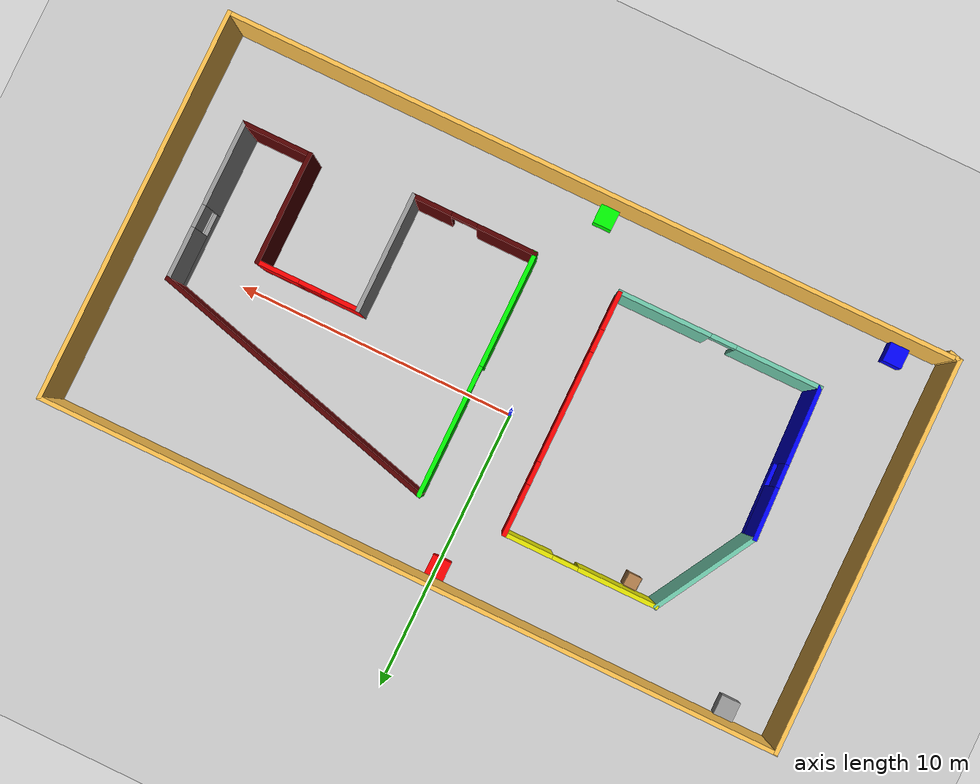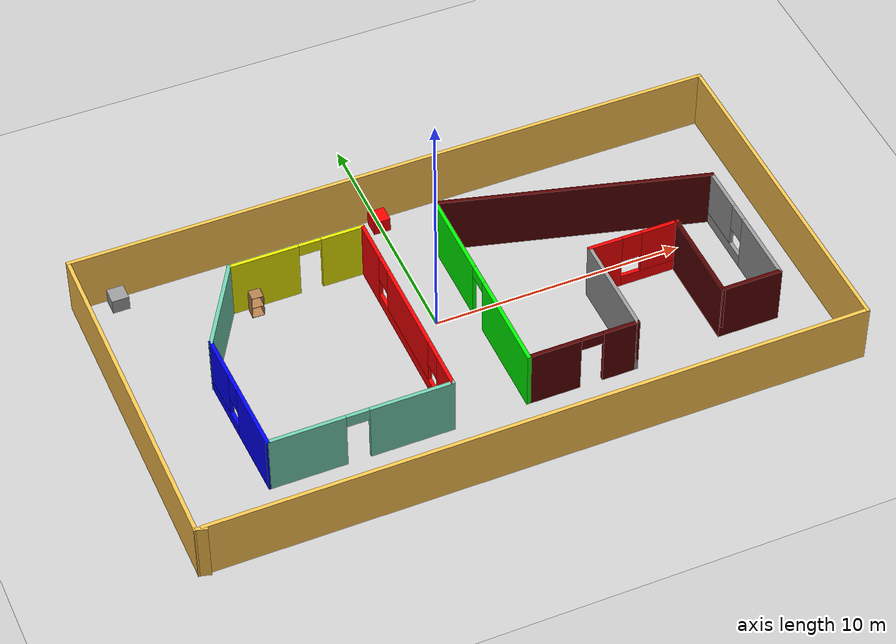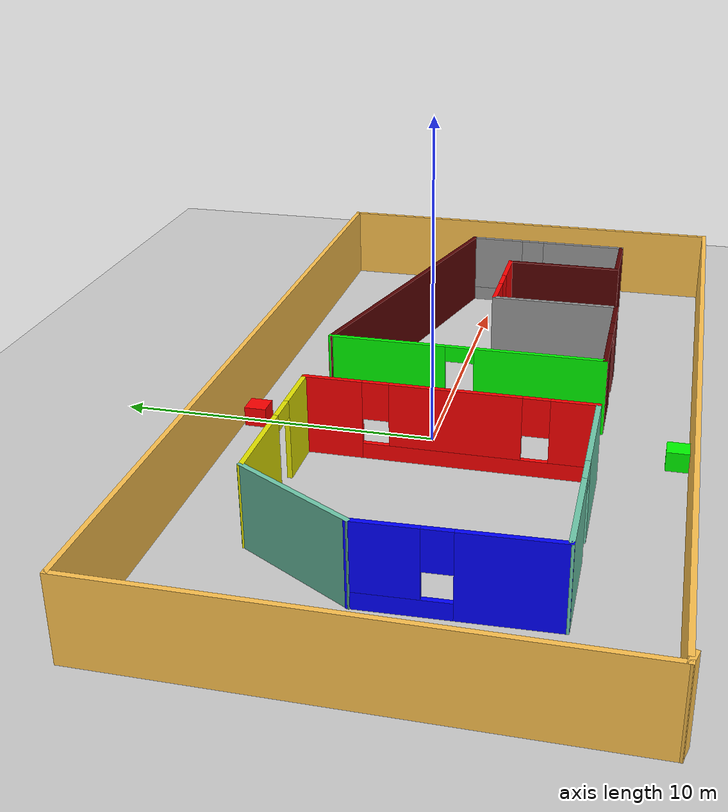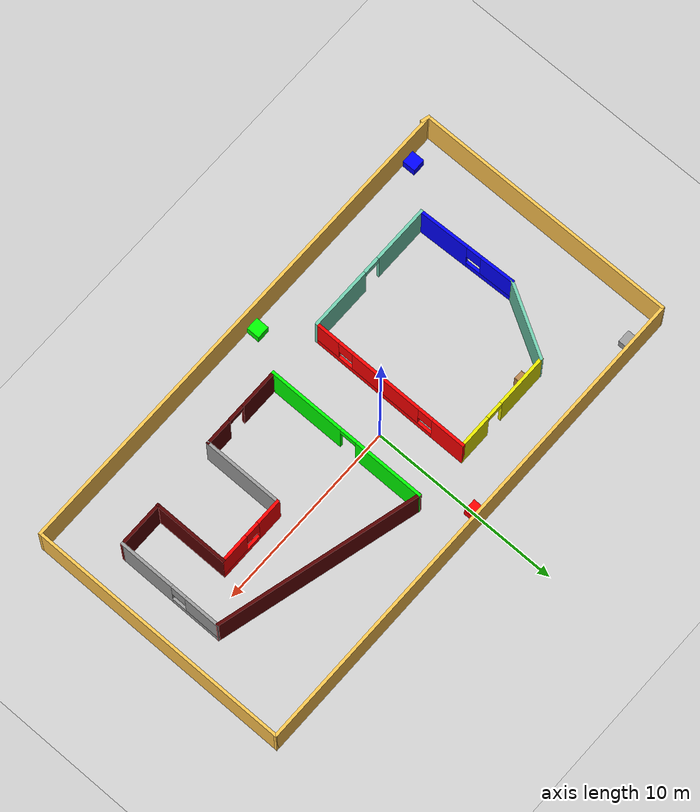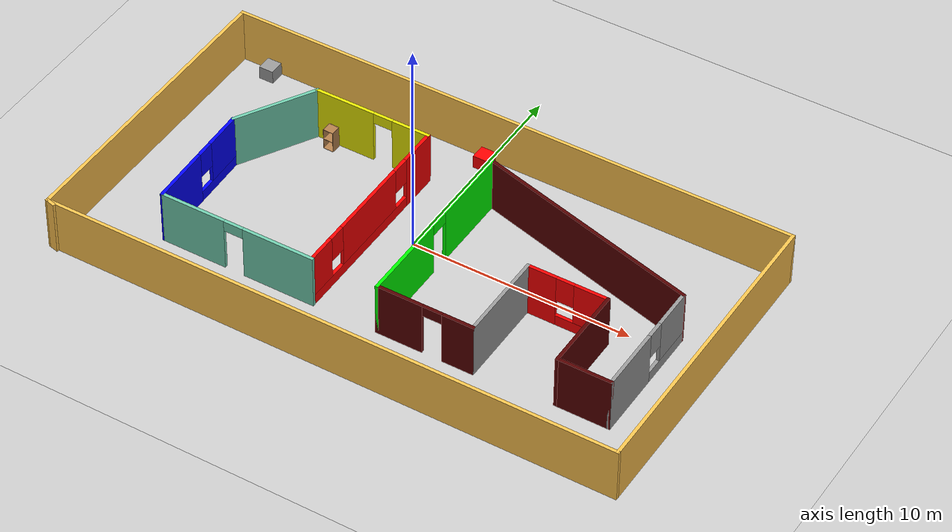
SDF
<sdf version="1.6">
 <world name="default">
  <light name="sun" type="directional">
   <pose>0 0 10 0 -0 0</pose>
   <diffuse>0.8 0.8 0.8 1</diffuse>
   <specular>0.2 0.2 0.2 1</specular>
   <attenuation>
    <range>1000</range>
    <constant>0.9</constant>
    <linear>0.01</linear>
    <quadratic>0.001</quadratic>
   </attenuation>
   <direction>-0.5 0.1 -0.9</direction>
  </light>
  <model name="ground_plane">
   <static>1</static>
   <link name="link">
    <collision name="collision">
     <geometry><plane><normal>0 0 1</normal><size>100 100</size></plane></geometry>
     <surface>
      <contact><collide_bitmask>65535</collide_bitmask></contact>
      <friction><ode><mu>100</mu><mu2>50</mu2></ode></friction>
     </surface>
    </collision>
    <visual name="visual">
     <cast_shadows>0</cast_shadows>
     <geometry><plane><normal>0 0 1</normal><size>100 100</size></plane></geometry>
     <material>
      <script><uri>file://media/materials/scripts/gazebo.material</uri><name>Gazebo/Grey</name></script>
     </material>
    </visual>
   </link>
  </model>
  <gravity>0 0 -9.8</gravity>
  <magnetic_field>6e-06 2.3e-05 -4.2e-05</magnetic_field>
  <atmosphere type="adiabatic"/>
  <physics name="default_physics" default="0" type="ode">
   <max_step_size>0.001</max_step_size>
   <real_time_factor>1</real_time_factor>
   <real_time_update_rate>1000</real_time_update_rate>
  </physics>
  <scene><ambient>0.4 0.4 0.4 1</ambient><background>0.7 0.7 0.7 1</background><shadows>1</shadows></scene>
  <spherical_coordinates>
   <surface_model>EARTH_WGS84</surface_model>
   <latitude_deg>0</latitude_deg>
   <longitude_deg>0</longitude_deg>
   <elevation>0</elevation>
   <heading_deg>0</heading_deg>
  </spherical_coordinates>
  <model name="Newbuilding">
   <pose>0.778779 -0.910535 0 0 -0 0</pose>
   <link name="Wall_0">
    <collision name="Wall_0_Collision">
     <geometry><box><size>26.25 0.15 2.5</size></box></geometry>
     <pose>0 0 1.25 0 -0 0</pose>
    </collision>
    <visual name="Wall_0_Visual">
     <pose>0 0 1.25 0 -0 0</pose>
     <geometry><box><size>26.25 0.15 2.5</size></box></geometry>
     <material>
      <script><uri>file://media/materials/scripts/gazebo.material</uri><name>Gazebo/Grey</name></script>
      <ambient>1 0.764706 0.305882 1</ambient>
     </material>
     <meta><layer>0</layer></meta>
    </visual>
    <pose>0.008428 6.97872 0 0 -0 0</pose>
   </link>
   <link name="Wall_1">
    <collision name="Wall_1_Collision">
     <geometry><box><size>14 0.15 2.5</size></box></geometry>
     <pose>0 0 1.25 0 -0 0</pose>
    </collision>
    <visual name="Wall_1_Visual">
     <pose>0 0 1.25 0 -0 0</pose>
     <geometry><box><size>14 0.15 2.5</size></box></geometry>
     <material>
      <script><uri>file://media/materials/scripts/gazebo.material</uri><name>Gazebo/Grey</name></script>
      <ambient>1 0.764706 0.305882 1</ambient>
     </material>
     <meta><layer>0</layer></meta>
    </visual>
    <pose>13.0584 0.053721 0 0 0 -1.5708</pose>
   </link>
   <link name="Wall_10">
    <pose>-5.82728 -4.14909 0 0 -0 3.14159</pose>
    <visual name="Wall_10_Visual_0">
     <pose>-1.97417 0 1.25 0 -0 0</pose>
     <geometry><box><size>3.30165 0.15 2.5</size></box></geometry>
     <material>
      <script><uri>file://media/materials/scripts/gazebo.material</uri><name>Gazebo/Grey</name></script>
      <ambient>0.435294 0.796078 0.67451 1</ambient>
     </material>
     <meta><layer>0</layer></meta>
    </visual>
    <collision name="Wall_10_Collision_0">
     <geometry><box><size>3.30165 0.15 2.5</size></box></geometry>
     <pose>-1.97417 0 1.25 0 -0 0</pose>
    </collision>
    <visual name="Wall_10_Visual_1">
     <pose>2.10083 0 1.25 0 -0 0</pose>
     <geometry><box><size>3.04835 0.15 2.5</size></box></geometry>
     <material>
      <script><uri>file://media/materials/scripts/gazebo.material</uri><name>Gazebo/Grey</name></script>
      <ambient>0.435294 0.796078 0.67451 1</ambient>
     </material>
     <meta><layer>0</layer></meta>
    </visual>
    <collision name="Wall_10_Collision_1">
     <geometry><box><size>3.04835 0.15 2.5</size></box></geometry>
     <pose>2.10083 0 1.25 0 -0 0</pose>
    </collision>
    <visual name="Wall_10_Visual_2">
     <pose>0.126652 0 2.25 0 -0 0</pose>
     <geometry><box><size>0.9 0.15 0.5</size></box></geometry>
     <material>
      <script><uri>file://media/materials/scripts/gazebo.material</uri><name>Gazebo/Grey</name></script>
      <ambient>0.435294 0.796078 0.67451 1</ambient>
     </material>
     <meta><layer>0</layer></meta>
    </visual>
    <collision name="Wall_10_Collision_2">
     <geometry><box><size>0.9 0.15 0.5</size></box></geometry>
     <pose>0.126652 0 2.25 0 -0 0</pose>
    </collision>
   </link>
   <link name="Wall_11">
    <pose>-9.46478 -1.51619 0 0 -0 1.60402</pose>
    <visual name="Wall_11_Visual_0">
     <pose>-1.32434 0 1.25 0 -0 0</pose>
     <geometry><box><size>2.77003 0.15 2.5</size></box></geometry>
     <material>
      <script><uri>file://media/materials/scripts/gazebo.material</uri><name>Gazebo/Grey</name></script>
      <ambient>0 0 0.99 1</ambient>
     </material>
     <meta><layer>0</layer></meta>
    </visual>
    <collision name="Wall_11_Collision_0">
     <geometry><box><size>2.77003 0.15 2.5</size></box></geometry>
     <pose>-1.32434 0 1.25 0 -0 0</pose>
    </collision>
    <visual name="Wall_11_Visual_1">
     <pose>1.38501 0 0.25 0 -0 0</pose>
     <geometry><box><size>2.64868 0.15 0.5</size></box></geometry>
     <material>
      <script><uri>file://media/materials/scripts/gazebo.material</uri><name>Gazebo/Grey</name></script>
      <ambient>0 0 0.99 1</ambient>
     </material>
     <meta><layer>0</layer></meta>
    </visual>
    <collision name="Wall_11_Collision_1">
     <geometry><box><size>2.64868 0.15 0.5</size></box></geometry>
     <pose>1.38501 0 0.25 0 -0 0</pose>
    </collision>
    <visual name="Wall_11_Visual_2">
     <pose>1.78501 0 1.5 0 -0 0</pose>
     <geometry><box><size>1.84868 0.15 2</size></box></geometry>
     <material>
      <script><uri>file://media/materials/scripts/gazebo.material</uri><name>Gazebo/Grey</name></script>
      <ambient>0 0 0.99 1</ambient>
     </material>
     <meta><layer>0</layer></meta>
    </visual>
    <collision name="Wall_11_Collision_2">
     <geometry><box><size>1.84868 0.15 2</size></box></geometry>
     <pose>1.78501 0 1.5 0 -0 0</pose>
    </collision>
    <visual name="Wall_11_Visual_3">
     <pose>0.460673 0 1.9 0 -0 0</pose>
     <geometry><box><size>0.8 0.15 1.2</size></box></geometry>
     <material>
      <script><uri>file://media/materials/scripts/gazebo.material</uri><name>Gazebo/Grey</name></script>
      <ambient>0 0 0.99 1</ambient>
     </material>
     <meta><layer>0</layer></meta>
    </visual>
    <collision name="Wall_11_Collision_3">
     <geometry><box><size>0.8 0.15 1.2</size></box></geometry>
     <pose>0.460673 0 1.9 0 -0 0</pose>
    </collision>
   </link>
   <link name="Wall_13">
    <pose>0.729506 0.212954 0 0 0 -1.5708</pose>
    <visual name="Wall_13_Visual_0">
     <pose>-2.49832 0 1.25 0 -0 0</pose>
     <geometry><box><size>3.75335 0.15 2.5</size></box></geometry>
     <material>
      <script><uri>file://media/materials/scripts/gazebo.material</uri><name>Gazebo/Grey</name></script>
      <ambient>0 0.99 0 1</ambient>
     </material>
     <meta><layer>0</layer></meta>
    </visual>
    <collision name="Wall_13_Collision_0">
     <geometry><box><size>3.75335 0.15 2.5</size></box></geometry>
     <pose>-2.49832 0 1.25 0 -0 0</pose>
    </collision>
    <visual name="Wall_13_Visual_1">
     <pose>2.32668 0 1.25 0 -0 0</pose>
     <geometry><box><size>4.09665 0.15 2.5</size></box></geometry>
     <material>
      <script><uri>file://media/materials/scripts/gazebo.material</uri><name>Gazebo/Grey</name></script>
      <ambient>0 0.99 0 1</ambient>
     </material>
     <meta><layer>0</layer></meta>
    </visual>
    <collision name="Wall_13_Collision_1">
     <geometry><box><size>4.09665 0.15 2.5</size></box></geometry>
     <pose>2.32668 0 1.25 0 -0 0</pose>
    </collision>
    <visual name="Wall_13_Visual_2">
     <pose>-0.171646 0 2.25 0 -0 0</pose>
     <geometry><box><size>0.9 0.15 0.5</size></box></geometry>
     <material>
      <script><uri>file://media/materials/scripts/gazebo.material</uri><name>Gazebo/Grey</name></script>
      <ambient>0 0.99 0 1</ambient>
     </material>
     <meta><layer>0</layer></meta>
    </visual>
    <collision name="Wall_13_Collision_2">
     <geometry><box><size>0.9 0.15 0.5</size></box></geometry>
     <pose>-0.171646 0 2.25 0 -0 0</pose>
    </collision>
   </link>
   <link name="Wall_15">
    <pose>2.90451 -4.08705 0 0 -0 0</pose>
    <visual name="Wall_15_Visual_0">
     <pose>-1.17335 0 1.25 0 -0 0</pose>
     <geometry><box><size>2.1533 0.15 2.5</size></box></geometry>
     <material>
      <script><uri>file://media/materials/scripts/gazebo.material</uri><name>Gazebo/Grey</name></script>
      <ambient>0.333333 0 0 1</ambient>
     </material>
     <meta><layer>0</layer></meta>
    </visual>
    <collision name="Wall_15_Collision_0">
     <geometry><box><size>2.1533 0.15 2.5</size></box></geometry>
     <pose>-1.17335 0 1.25 0 -0 0</pose>
    </collision>
    <visual name="Wall_15_Visual_1">
     <pose>1.52665 0 1.25 0 -0 0</pose>
     <geometry><box><size>1.4467 0.15 2.5</size></box></geometry>
     <material>
      <script><uri>file://media/materials/scripts/gazebo.material</uri><name>Gazebo/Grey</name></script>
      <ambient>0.333333 0 0 1</ambient>
     </material>
     <meta><layer>0</layer></meta>
    </visual>
    <collision name="Wall_15_Collision_1">
     <geometry><box><size>1.4467 0.15 2.5</size></box></geometry>
     <pose>1.52665 0 1.25 0 -0 0</pose>
    </collision>
    <visual name="Wall_15_Visual_2">
     <pose>0.353298 0 2.25 0 -0 0</pose>
     <geometry><box><size>0.9 0.15 0.5</size></box></geometry>
     <material>
      <script><uri>file://media/materials/scripts/gazebo.material</uri><name>Gazebo/Grey</name></script>
      <ambient>0.333333 0 0 1</ambient>
     </material>
     <meta><layer>0</layer></meta>
    </visual>
    <collision name="Wall_15_Collision_2">
     <geometry><box><size>0.9 0.15 0.5</size></box></geometry>
     <pose>0.353298 0 2.25 0 -0 0</pose>
    </collision>
   </link>
   <link name="Wall_16">
    <collision name="Wall_16_Collision">
     <geometry><box><size>4.25 0.15 2.5</size></box></geometry>
     <pose>0 0 1.25 0 -0 0</pose>
    </collision>
    <visual name="Wall_16_Visual">
     <pose>0 0 1.25 0 -0 0</pose>
     <geometry><box><size>4.25 0.15 2.5</size></box></geometry>
     <material>
      <script><uri>file://media/materials/scripts/gazebo.material</uri><name>Gazebo/Grey</name></script>
      <ambient>0.9 0.9 0.9 1</ambient>
     </material>
     <meta><layer>0</layer></meta>
    </visual>
    <pose>5.07951 -2.03705 0 0 -0 1.5708</pose>
   </link>
   <link name="Wall_17">
    <pose>6.87951 0.012954 0 0 -0 0</pose>
    <visual name="Wall_17_Visual_0">
     <pose>-1.18044 0 1.25 0 -0 0</pose>
     <geometry><box><size>1.38912 0.15 2.5</size></box></geometry>
     <material>
      <script><uri>file://media/materials/scripts/gazebo.material</uri><name>Gazebo/Grey</name></script>
      <ambient>0.99 0 0 1</ambient>
     </material>
     <meta><layer>0</layer></meta>
    </visual>
    <collision name="Wall_17_Collision_0">
     <geometry><box><size>1.38912 0.15 2.5</size></box></geometry>
     <pose>-1.18044 0 1.25 0 -0 0</pose>
    </collision>
    <visual name="Wall_17_Visual_1">
     <pose>0.694558 0 0.25 0 -0 0</pose>
     <geometry><box><size>2.36089 0.15 0.5</size></box></geometry>
     <material>
      <script><uri>file://media/materials/scripts/gazebo.material</uri><name>Gazebo/Grey</name></script>
      <ambient>0.99 0 0 1</ambient>
     </material>
     <meta><layer>0</layer></meta>
    </visual>
    <collision name="Wall_17_Collision_1">
     <geometry><box><size>2.36089 0.15 0.5</size></box></geometry>
     <pose>0.694558 0 0.25 0 -0 0</pose>
    </collision>
    <visual name="Wall_17_Visual_2">
     <pose>1.09456 0 1.5 0 -0 0</pose>
     <geometry><box><size>1.56089 0.15 2</size></box></geometry>
     <material>
      <script><uri>file://media/materials/scripts/gazebo.material</uri><name>Gazebo/Grey</name></script>
      <ambient>0.99 0 0 1</ambient>
     </material>
     <meta><layer>0</layer></meta>
    </visual>
    <collision name="Wall_17_Collision_2">
     <geometry><box><size>1.56089 0.15 2</size></box></geometry>
     <pose>1.09456 0 1.5 0 -0 0</pose>
    </collision>
    <visual name="Wall_17_Visual_3">
     <pose>-0.085885 0 1.9 0 -0 0</pose>
     <geometry><box><size>0.8 0.15 1.2</size></box></geometry>
     <material>
      <script><uri>file://media/materials/scripts/gazebo.material</uri><name>Gazebo/Grey</name></script>
      <ambient>0.99 0 0 1</ambient>
     </material>
     <meta><layer>0</layer></meta>
    </visual>
    <collision name="Wall_17_Collision_3">
     <geometry><box><size>0.8 0.15 1.2</size></box></geometry>
     <pose>-0.085885 0 1.9 0 -0 0</pose>
    </collision>
   </link>
   <link name="Wall_18">
    <collision name="Wall_18_Collision">
     <geometry><box><size>4 0.15 2.5</size></box></geometry>
     <pose>0 0 1.25 0 -0 0</pose>
    </collision>
    <visual name="Wall_18_Visual">
     <pose>0 0 1.25 0 -0 0</pose>
     <geometry><box><size>4 0.15 2.5</size></box></geometry>
     <material>
      <script><uri>file://media/materials/scripts/gazebo.material</uri><name>Gazebo/Grey</name></script>
      <ambient>0.333333 0 0 1</ambient>
     </material>
     <meta><layer>0</layer></meta>
    </visual>
    <pose>8.67951 -1.91205 0 0 0 -1.5708</pose>
   </link>
   <link name="Wall_19">
    <collision name="Wall_19_Collision">
     <geometry><box><size>2.5 0.15 2.5</size></box></geometry>
     <pose>0 0 1.25 0 -0 0</pose>
    </collision>
    <visual name="Wall_19_Visual">
     <pose>0 0 1.25 0 -0 0</pose>
     <geometry><box><size>2.5 0.15 2.5</size></box></geometry>
     <material>
      <script><uri>file://media/materials/scripts/gazebo.material</uri><name>Gazebo/Grey</name></script>
      <ambient>0.333333 0 0 1</ambient>
     </material>
     <meta><layer>0</layer></meta>
    </visual>
    <pose>9.85451 -3.83705 0 0 -0 0</pose>
   </link>
   <link name="Wall_2">
    <collision name="Wall_2_Collision">
     <geometry><box><size>26 0.15 2.5</size></box></geometry>
     <pose>0 0 1.25 0 -0 0</pose>
    </collision>
    <visual name="Wall_2_Visual">
     <pose>0 0 1.25 0 -0 0</pose>
     <geometry><box><size>26 0.15 2.5</size></box></geometry>
     <material>
      <script><uri>file://media/materials/scripts/gazebo.material</uri><name>Gazebo/Grey</name></script>
      <ambient>1 0.764706 0.305882 1</ambient>
     </material>
     <meta><layer>0</layer></meta>
    </visual>
    <pose>0.133428 -6.87128 0 0 -0 3.14159</pose>
   </link>
   <link name="Wall_20">
    <pose>11.0295 -1.03705 0 0 -0 1.5708</pose>
    <visual name="Wall_20_Visual_0">
     <pose>-1.36865 0 1.25 0 -0 0</pose>
     <geometry><box><size>3.01269 0.15 2.5</size></box></geometry>
     <material>
      <script><uri>file://media/materials/scripts/gazebo.material</uri><name>Gazebo/Grey</name></script>
      <ambient>0.1 0.1 0.1 1</ambient>
     </material>
     <meta><layer>0</layer></meta>
    </visual>
    <collision name="Wall_20_Collision_0">
     <geometry><box><size>3.01269 0.15 2.5</size></box></geometry>
     <pose>-1.36865 0 1.25 0 -0 0</pose>
    </collision>
    <visual name="Wall_20_Visual_1">
     <pose>1.50635 0 0.25 0 -0 0</pose>
     <geometry><box><size>2.73731 0.15 0.5</size></box></geometry>
     <material>
      <script><uri>file://media/materials/scripts/gazebo.material</uri><name>Gazebo/Grey</name></script>
      <ambient>0.1 0.1 0.1 1</ambient>
     </material>
     <meta><layer>0</layer></meta>
    </visual>
    <collision name="Wall_20_Collision_1">
     <geometry><box><size>2.73731 0.15 0.5</size></box></geometry>
     <pose>1.50635 0 0.25 0 -0 0</pose>
    </collision>
    <visual name="Wall_20_Visual_2">
     <pose>1.90635 0 1.5 0 -0 0</pose>
     <geometry><box><size>1.93731 0.15 2</size></box></geometry>
     <material>
      <script><uri>file://media/materials/scripts/gazebo.material</uri><name>Gazebo/Grey</name></script>
      <ambient>0.1 0.1 0.1 1</ambient>
     </material>
     <meta><layer>0</layer></meta>
    </visual>
    <collision name="Wall_20_Collision_2">
     <geometry><box><size>1.93731 0.15 2</size></box></geometry>
     <pose>1.90635 0 1.5 0 -0 0</pose>
    </collision>
    <visual name="Wall_20_Visual_3">
     <pose>0.537691 0 1.9 0 -0 0</pose>
     <geometry><box><size>0.8 0.15 1.2</size></box></geometry>
     <material>
      <script><uri>file://media/materials/scripts/gazebo.material</uri><name>Gazebo/Grey</name></script>
      <ambient>0.1 0.1 0.1 1</ambient>
     </material>
     <meta><layer>0</layer></meta>
    </visual>
    <collision name="Wall_20_Collision_3">
     <geometry><box><size>0.8 0.15 1.2</size></box></geometry>
     <pose>0.537691 0 1.9 0 -0 0</pose>
    </collision>
   </link>
   <link name="Wall_21">
    <collision name="Wall_21_Collision">
     <geometry><box><size>10.8108 0.15 2.5</size></box></geometry>
     <pose>0 0 1.25 0 -0 0</pose>
    </collision>
    <visual name="Wall_21_Visual">
     <pose>0 0 1.25 0 -0 0</pose>
     <geometry><box><size>10.8108 0.15 2.5</size></box></geometry>
     <material>
      <script><uri>file://media/materials/scripts/gazebo.material</uri><name>Gazebo/Grey</name></script>
      <ambient>0.333333 0 0 1</ambient>
     </material>
     <meta><layer>0</layer></meta>
    </visual>
    <pose>5.87951 3.13795 0 0 -0 2.88069</pose>
   </link>
   <link name="Wall_4">
    <collision name="Wall_4_Collision">
     <geometry><box><size>14 0.15 2.5</size></box></geometry>
     <pose>0 0 1.25 0 -0 0</pose>
    </collision>
    <visual name="Wall_4_Visual">
     <pose>0 0 1.25 0 -0 0</pose>
     <geometry><box><size>14 0.15 2.5</size></box></geometry>
     <material>
      <script><uri>file://media/materials/scripts/gazebo.material</uri><name>Gazebo/Grey</name></script>
      <ambient>1 0.764706 0.305882 1</ambient>
     </material>
     <meta><layer>0</layer></meta>
    </visual>
    <pose>-13.0416 0.053721 0 0 0 -1.5708</pose>
   </link>
   <link name="Wall_5">
    <collision name="Wall_5_Collision">
     <geometry><box><size>0.5 0.15 2.5</size></box></geometry>
     <pose>0 0 1.25 0 -0 0</pose>
    </collision>
    <visual name="Wall_5_Visual">
     <pose>0 0 1.25 0 -0 0</pose>
     <geometry><box><size>0.5 0.15 2.5</size></box></geometry>
     <material>
      <script><uri>file://media/materials/scripts/gazebo.material</uri><name>Gazebo/Grey</name></script>
      <ambient>1 0.764706 0.305882 1</ambient>
     </material>
     <meta><layer>0</layer></meta>
    </visual>
    <pose>-12.8725 -6.91657 0 0 0 -0.261799</pose>
   </link>
   <link name="Wall_7">
    <collision name="Wall_7_Collision">
     <geometry><box><size>4 0.15 2.5</size></box></geometry>
     <pose>0 0 1.25 0 -0 0</pose>
    </collision>
    <visual name="Wall_7_Visual">
     <pose>0 0 1.25 0 -0 0</pose>
     <geometry><box><size>4 0.15 2.5</size></box></geometry>
     <material>
      <script><uri>file://media/materials/scripts/gazebo.material</uri><name>Gazebo/Grey</name></script>
      <ambient>0.435294 0.796078 0.67451 1</ambient>
     </material>
     <meta><layer>0</layer></meta>
    </visual>
    <pose>-8.58978 2.78381 0 0 -0 1.0472</pose>
   </link>
   <link name="Wall_8">
    <pose>-4.95228 4.45091 0 0 -0 0</pose>
    <visual name="Wall_8_Visual_0">
     <pose>-1.33318 0 1.25 0 -0 0</pose>
     <geometry><box><size>2.83364 0.15 2.5</size></box></geometry>
     <material>
      <script><uri>file://media/materials/scripts/gazebo.material</uri><name>Gazebo/Grey</name></script>
      <ambient>0.9 0.9 0 1</ambient>
     </material>
     <meta><layer>0</layer></meta>
    </visual>
    <collision name="Wall_8_Collision_0">
     <geometry><box><size>2.83364 0.15 2.5</size></box></geometry>
     <pose>-1.33318 0 1.25 0 -0 0</pose>
    </collision>
    <visual name="Wall_8_Visual_1">
     <pose>1.86682 0 1.25 0 -0 0</pose>
     <geometry><box><size>1.76636 0.15 2.5</size></box></geometry>
     <material>
      <script><uri>file://media/materials/scripts/gazebo.material</uri><name>Gazebo/Grey</name></script>
      <ambient>0.9 0.9 0 1</ambient>
     </material>
     <meta><layer>0</layer></meta>
    </visual>
    <collision name="Wall_8_Collision_1">
     <geometry><box><size>1.76636 0.15 2.5</size></box></geometry>
     <pose>1.86682 0 1.25 0 -0 0</pose>
    </collision>
    <visual name="Wall_8_Visual_2">
     <pose>0.533637 0 2.25 0 -0 0</pose>
     <geometry><box><size>0.9 0.15 0.5</size></box></geometry>
     <material>
      <script><uri>file://media/materials/scripts/gazebo.material</uri><name>Gazebo/Grey</name></script>
      <ambient>0.9 0.9 0 1</ambient>
     </material>
     <meta><layer>0</layer></meta>
    </visual>
    <collision name="Wall_8_Collision_2">
     <geometry><box><size>0.9 0.15 0.5</size></box></geometry>
     <pose>0.533637 0 2.25 0 -0 0</pose>
    </collision>
   </link>
   <link name="Wall_9">
    <pose>-2.27728 0.150906 0 0 0 -1.5708</pose>
    <visual name="Wall_9_Visual_0">
     <pose>-3.45809 0 1.25 0 -0 0</pose>
     <geometry><box><size>1.83383 0.15 2.5</size></box></geometry>
     <material>
      <script><uri>file://media/materials/scripts/gazebo.material</uri><name>Gazebo/Grey</name></script>
      <ambient>0.99 0 0 1</ambient>
     </material>
     <meta><layer>0</layer></meta>
    </visual>
    <collision name="Wall_9_Collision_0">
     <geometry><box><size>1.83383 0.15 2.5</size></box></geometry>
     <pose>-3.45809 0 1.25 0 -0 0</pose>
    </collision>
    <visual name="Wall_9_Visual_1">
     <pose>0.916913 0 0.25 0 -0 0</pose>
     <geometry><box><size>6.91617 0.15 0.5</size></box></geometry>
     <material>
      <script><uri>file://media/materials/scripts/gazebo.material</uri><name>Gazebo/Grey</name></script>
      <ambient>0.99 0 0 1</ambient>
     </material>
     <meta><layer>0</layer></meta>
    </visual>
    <collision name="Wall_9_Collision_1">
     <geometry><box><size>6.91617 0.15 0.5</size></box></geometry>
     <pose>0.916913 0 0.25 0 -0 0</pose>
    </collision>
    <visual name="Wall_9_Visual_2">
     <pose>0.208284 0 1.5 0 -0 0</pose>
     <geometry><box><size>3.89892 0.15 2</size></box></geometry>
     <material>
      <script><uri>file://media/materials/scripts/gazebo.material</uri><name>Gazebo/Grey</name></script>
      <ambient>0.99 0 0 1</ambient>
     </material>
     <meta><layer>0</layer></meta>
    </visual>
    <collision name="Wall_9_Collision_2">
     <geometry><box><size>3.89892 0.15 2</size></box></geometry>
     <pose>0.208284 0 1.5 0 -0 0</pose>
    </collision>
    <visual name="Wall_9_Visual_3">
     <pose>3.66637 0 1.5 0 -0 0</pose>
     <geometry><box><size>1.41726 0.15 2</size></box></geometry>
     <material>
      <script><uri>file://media/materials/scripts/gazebo.material</uri><name>Gazebo/Grey</name></script>
      <ambient>0.99 0 0 1</ambient>
     </material>
     <meta><layer>0</layer></meta>
    </visual>
    <collision name="Wall_9_Collision_3">
     <geometry><box><size>1.41726 0.15 2</size></box></geometry>
     <pose>3.66637 0 1.5 0 -0 0</pose>
    </collision>
    <visual name="Wall_9_Visual_4">
     <pose>-2.14117 0 1.9 0 -0 0</pose>
     <geometry><box><size>0.8 0.15 1.2</size></box></geometry>
     <material>
      <script><uri>file://media/materials/scripts/gazebo.material</uri><name>Gazebo/Grey</name></script>
      <ambient>0.99 0 0 1</ambient>
     </material>
     <meta><layer>0</layer></meta>
    </visual>
    <collision name="Wall_9_Collision_4">
     <geometry><box><size>0.8 0.15 1.2</size></box></geometry>
     <pose>-2.14117 0 1.9 0 -0 0</pose>
    </collision>
    <visual name="Wall_9_Visual_5">
     <pose>2.55774 0 1.9 0 -0 0</pose>
     <geometry><box><size>0.8 0.15 1.2</size></box></geometry>
     <material>
      <script><uri>file://media/materials/scripts/gazebo.material</uri><name>Gazebo/Grey</name></script>
      <ambient>0.99 0 0 1</ambient>
     </material>
     <meta><layer>0</layer></meta>
    </visual>
    <collision name="Wall_9_Collision_5">
     <geometry><box><size>0.8 0.15 1.2</size></box></geometry>
     <pose>2.55774 0 1.9 0 -0 0</pose>
    </collision>
   </link>
   <static>1</static>
  </model>
  <model name="cabinet">
   <static>1</static>
   <link name="cabinet_bottom_plate">
    <inertial>
     <pose>0 0 -1 0 -0 0</pose>
     <inertia><ixx>2.05</ixx><ixy>0</ixy><ixz>0</ixz><iyy>2.05</iyy><iyz>0</iyz><izz>2.05</izz></inertia>
     <mass>25</mass>
    </inertial>
    <collision name="cabinet_bottom_plate_geom">
     <pose>0 0 0.01 0 -0 0</pose>
     <geometry><box><size>0.45 0.45 0.02</size></box></geometry>
    </collision>
    <visual name="cabinet_bottom_plate_geom_visual">
     <pose>0 0 0.01 0 -0 0</pose>
     <geometry><box><size>0.45 0.45 0.02</size></box></geometry>
     <material>
      <script><uri>file://media/materials/scripts/gazebo.material</uri><name>Gazebo/Wood</name></script>
     </material>
    </visual>
    <collision name="cabinet_bottom_plate_geom_cabinet_back_plate">
     <pose>0.235 0 0.51 0 -0 0</pose>
     <geometry><box><size>0.02 0.45 1.02</size></box></geometry>
    </collision>
    <visual name="cabinet_bottom_plate_geom_cabinet_back_plate_visual">
     <pose>0.235 0 0.51 0 -0 0</pose>
     <geometry><box><size>0.02 0.45 1.02</size></box></geometry>
     <material>
      <script><uri>file://media/materials/scripts/gazebo.material</uri><name>Gazebo/Wood</name></script>
     </material>
    </visual>
    <collision name="cabinet_bottom_plate_geom_cabinet_left_plate">
     <pose>0 0.235 0.51 0 -0 0</pose>
     <geometry><box><size>0.45 0.02 1.02</size></box></geometry>
    </collision>
    <visual name="cabinet_bottom_plate_geom_cabinet_left_plate_visual">
     <pose>0 0.235 0.51 0 -0 0</pose>
     <geometry><box><size>0.45 0.02 1.02</size></box></geometry>
     <material>
      <script><uri>file://media/materials/scripts/gazebo.material</uri><name>Gazebo/Wood</name></script>
     </material>
    </visual>
    <collision name="cabinet_bottom_plate_geom_cabinet_middle_plate">
     <pose>0 0 0.51 0 -0 0</pose>
     <geometry><box><size>0.45 0.45 0.02</size></box></geometry>
    </collision>
    <visual name="cabinet_bottom_plate_geom_cabinet_middle_plate_visual">
     <pose>0 0 0.51 0 -0 0</pose>
     <geometry><box><size>0.45 0.45 0.02</size></box></geometry>
     <material>
      <script><uri>file://media/materials/scripts/gazebo.material</uri><name>Gazebo/Wood</name></script>
     </material>
    </visual>
    <collision name="cabinet_bottom_plate_geom_cabinet_right_plate">
     <pose>0 -0.235 0.51 0 -0 0</pose>
     <geometry><box><size>0.45 0.02 1.02</size></box></geometry>
    </collision>
    <visual name="cabinet_bottom_plate_geom_cabinet_right_plate_visual">
     <pose>0 -0.235 0.51 0 -0 0</pose>
     <geometry><box><size>0.45 0.02 1.02</size></box></geometry>
     <material>
      <script><uri>file://media/materials/scripts/gazebo.material</uri><name>Gazebo/Wood</name></script>
     </material>
    </visual>
    <collision name="cabinet_bottom_plate_geom_cabinet_top_plate">
     <pose>0 0 1.01 0 -0 0</pose>
     <geometry><box><size>0.45 0.45 0.02</size></box></geometry>
    </collision>
    <visual name="cabinet_bottom_plate_geom_cabinet_top_plate_visual">
     <pose>0 0 1.01 0 -0 0</pose>
     <geometry><box><size>0.45 0.45 0.02</size></box></geometry>
     <material>
      <script><uri>file://media/materials/scripts/gazebo.material</uri><name>Gazebo/Wood</name></script>
     </material>
    </visual>
   </link>
   <pose>-5.99473 3.19362 0 0 -0 1.53846</pose>
  </model>
  <model name="bay_box_1">
   <pose>-0.038996 5.58744 0.308402 0 -0 1e-06</pose>
   <link name="link">
    <inertial>
     <mass>1</mass>
     <inertia>
      <ixx>0.166667</ixx>
      <ixy>0</ixy>
      <ixz>0</ixz>
      <iyy>0.166667</iyy>
      <iyz>0</iyz>
      <izz>0.166667</izz>
     </inertia>
    </inertial>
    <collision name="collision">
     <geometry><box><size>0.674634 0.683624 0.616804</size></box></geometry>
    </collision>
    <visual name="visual">
     <geometry><box><size>0.674634 0.683624 0.616804</size></box></geometry>
     <material>
      <script><uri>file://media/materials/scripts/gazebo.material</uri><name>Gazebo/Grey</name></script>
      <ambient>0.99 0 0 1</ambient>
     </material>
    </visual>
   </link>
  </model>
  <model name="bay_box_2">
   <pose>-0.044455 -7.36498 0.308397 -8e-06 7e-06 -3e-06</pose>
   <link name="link">
    <inertial>
     <mass>1</mass>
     <inertia>
      <ixx>0.166667</ixx>
      <ixy>0</ixy>
      <ixz>0</ixz>
      <iyy>0.166667</iyy>
      <iyz>0</iyz>
      <izz>0.166667</izz>
     </inertia>
    </inertial>
    <collision name="collision">
     <geometry><box><size>0.674634 0.683624 0.616804</size></box></geometry>
    </collision>
    <visual name="visual">
     <geometry><box><size>0.674634 0.683624 0.616804</size></box></geometry>
     <material>
      <script><name>Gazebo/Grey</name><uri>file://media/materials/scripts/gazebo.material</uri></script>
      <ambient>0 0.99 0 1</ambient>
     </material>
    </visual>
   </link>
  </model>
  <model name="bay_box_3">
   <pose>-10.7419 -7.35412 0.308402 0 0 -3e-06</pose>
   <link name="link">
    <inertial>
     <mass>1</mass>
     <inertia>
      <ixx>0.166667</ixx>
      <ixy>0</ixy>
      <ixz>0</ixz>
      <iyy>0.166667</iyy>
      <iyz>0</iyz>
      <izz>0.166667</izz>
     </inertia>
    </inertial>
    <collision name="collision">
     <geometry><box><size>0.674634 0.683624 0.616804</size></box></geometry>
    </collision>
    <visual name="visual">
     <geometry><box><size>0.674634 0.683624 0.616804</size></box></geometry>
     <material>
      <script><name>Gazebo/Grey</name><uri>file://media/materials/scripts/gazebo.material</uri></script>
      <ambient>0 0 0.99 1</ambient>
     </material>
    </visual>
   </link>
  </model>
  <model name="bay_box_4">
   <pose>-10.6411 5.62828 0.308402 0 0 -3e-06</pose>
   <link name="link">
    <inertial>
     <mass>1</mass>
     <inertia>
      <ixx>0.166667</ixx>
      <ixy>0</ixy>
      <ixz>0</ixz>
      <iyy>0.166667</iyy>
      <iyz>0</iyz>
      <izz>0.166667</izz>
     </inertia>
    </inertial>
    <collision name="collision">
     <geometry><box><size>0.674634 0.683624 0.616804</size></box></geometry>
    </collision>
    <visual name="visual">
     <geometry><box><size>0.674634 0.683624 0.616804</size></box></geometry>
     <material>
      <script><name>Gazebo/Grey</name><uri>file://media/materials/scripts/gazebo.material</uri></script>
      <ambient>0 0 0 1</ambient>
     </material>
    </visual>
   </link>
  </model>
 </world>
</sdf>
